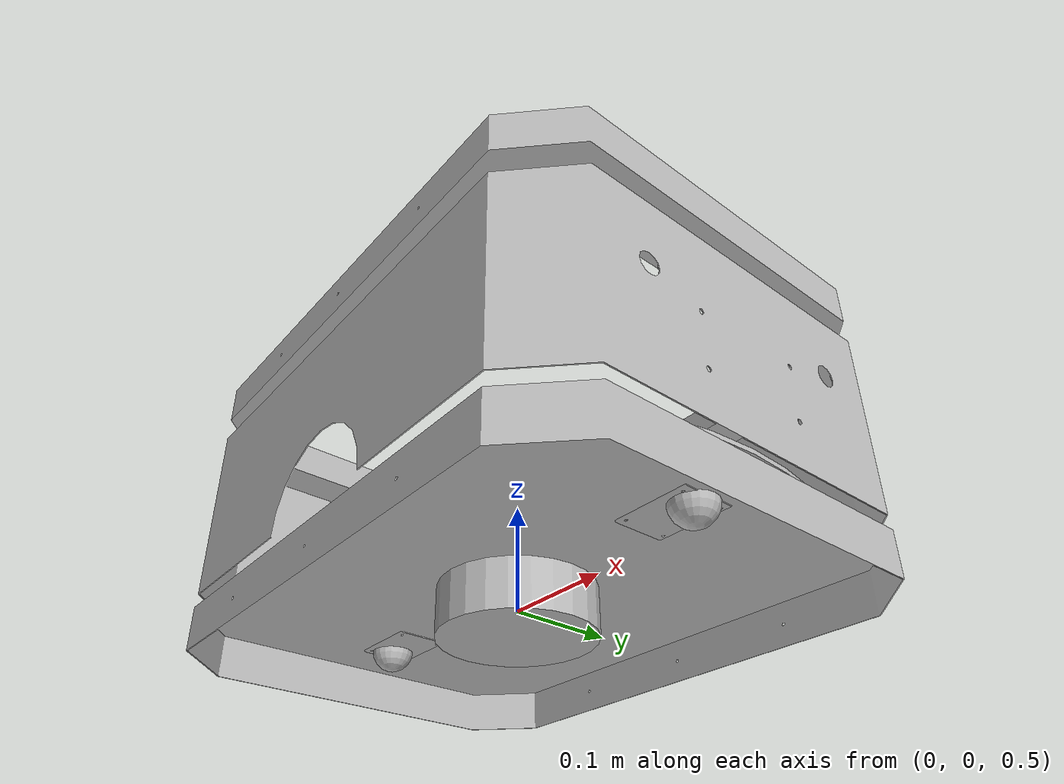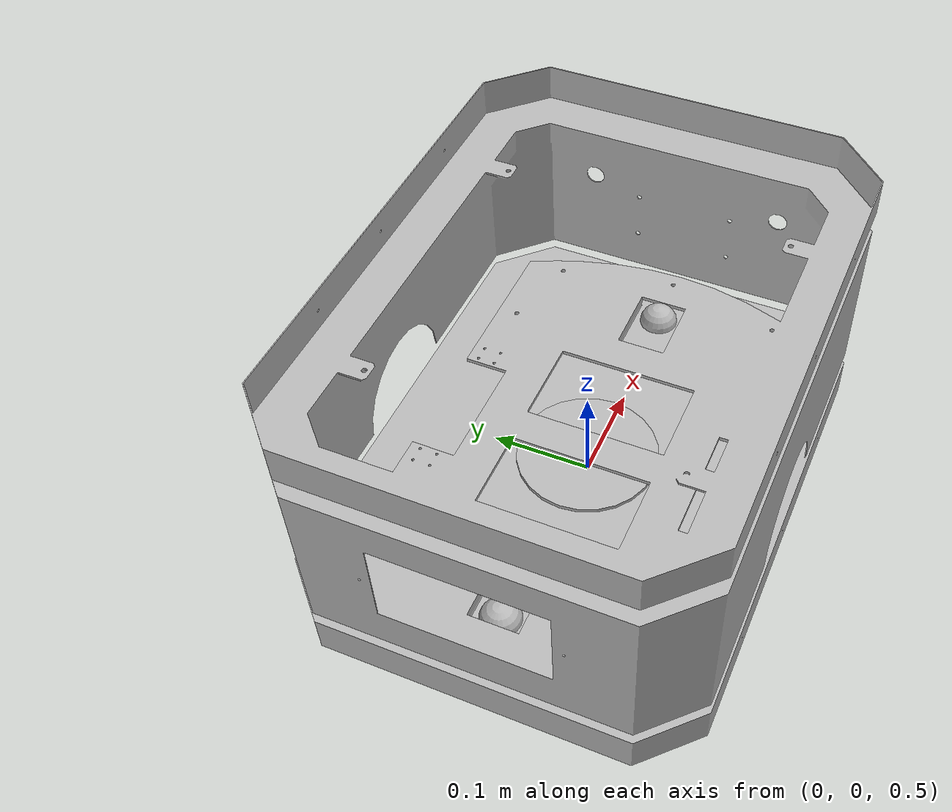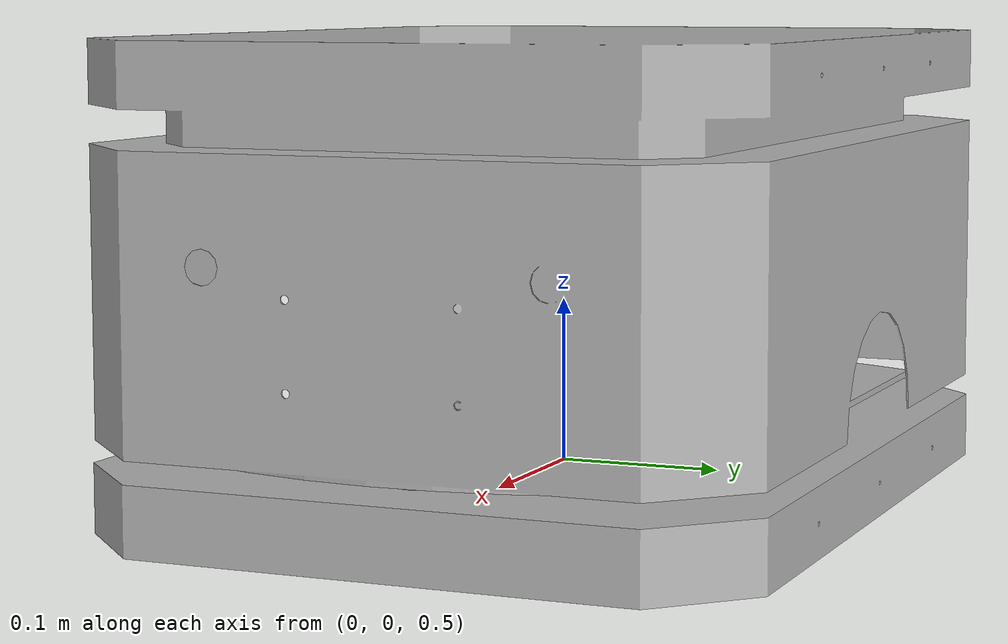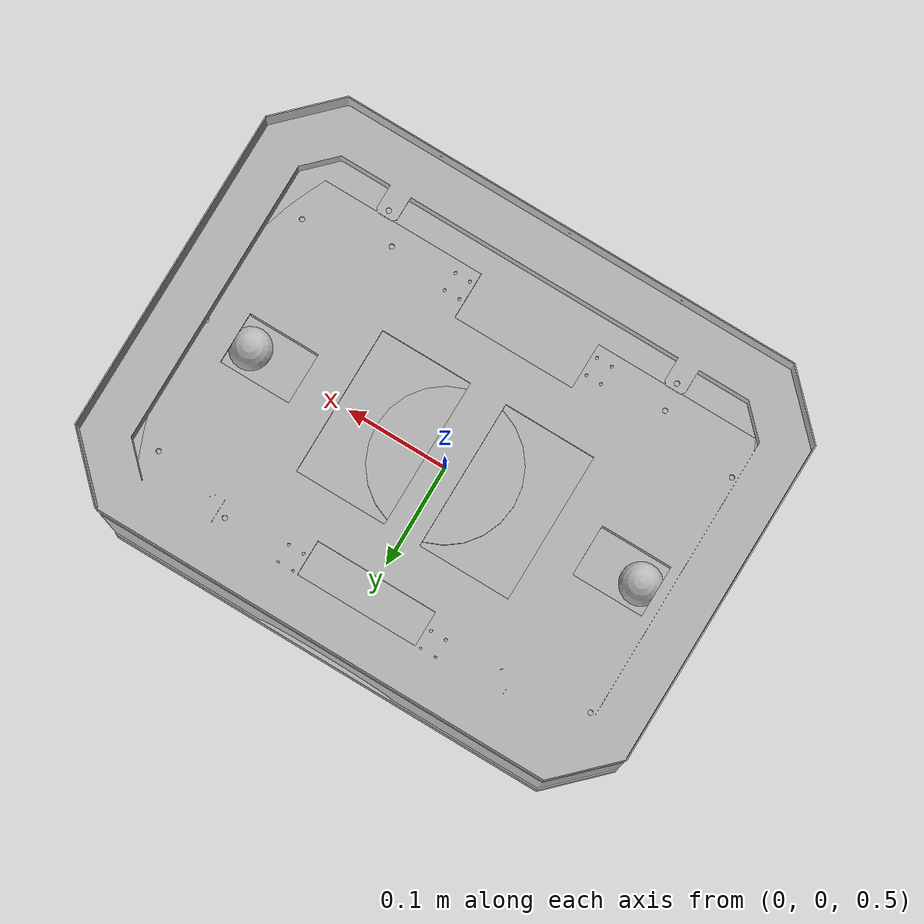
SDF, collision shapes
<?xml version="1.1" ?>
<sdf version="1.5">
    <model name="diff_bot">
        <pose>0 0 .5 0 0 0</pose>
        <!-- Main Chassis -->
        <link name="base_link">
        <!-- Physics -->
        <collision name="collision">
            <pose>0 0 0.03 0 0 0</pose>
            <geometry>
                <mesh>
                    <uri>model://models/base_link.STL</uri>
                </mesh>
            </geometry>
        </collision>
        <inertial>
            <mass>10</mass>
            <pose>0.0 0.0 0.03 0 0 0</pose>
            <inertia>
            <ixx>0.018771*2</ixx>
            <ixy>4.3757E-09*2</ixy>
            <ixz>0.00017048*2</ixz>
            <iyy>0.03253*2</iyy>
            <iyz>1.7492E-11*2</iyz>
            <izz>0.04738*2</izz>
            </inertia>
        </inertial>
        <!-- Visual -->
        <!-- Base frame -->
        <visual name="base">
            <pose>0 0 0.03 0 0 0</pose>
            <geometry>
                <mesh>
                    <uri>model://models/base_link.STL</uri>
                </mesh>
            </geometry>
            <material>
            <color rgba="0.66667 0.69804 0.76471 1" />
            </material>
        </visual>
        <!-- Caster front -->
        <collision name="caster_front_collision">
            <pose>0.2 0 0.02 0 0 0</pose>
            <geometry>
                <sphere>
                    <radius>0.02</radius>
                </sphere>
            </geometry>
            <surface>
            <friction>
                <ode>
                <mu>0</mu>
                <mu2>0</mu2>
                <slip1>1.0</slip1>
                <slip2>1.0</slip2>
                </ode>
            </friction>
            </surface>
        </collision>
        <visual name="caster_front_visual">
            <pose>0.2 0 0.02 0 0 0</pose>
            <geometry>
                <sphere>
                    <radius>0.02</radius>
                </sphere>
            </geometry>
            <material>

                <color rgba="0.66667 0.69804 0.76471 1" />

            </material>
        </visual>
        <!-- Caster back -->
        <collision name="caster_back_collision">
            <pose>-0.2 0 0.02 0 0 0</pose>
            <geometry>
                <sphere>
                    <radius>0.02</radius>
                </sphere>
            </geometry>
            <surface>
            <friction>
                <ode>
                <mu>0</mu>
                <mu2>0</mu2>
                <slip1>1.0</slip1>
                <slip2>1.0</slip2>
                </ode>
            </friction>
            </surface>
        </collision>
        <visual name="caster_back_visual">
            <pose>-0.2 0 0.02 0 0 0</pose>
            <geometry>
                <sphere>
                    <radius>0.02</radius>
                </sphere>
            </geometry>
            <material>

                <color rgba="0.66667 0.69804 0.76471 1" />

            </material>
        </visual>
        </link>

        <!-- Cover link -->
        <link name="cover_link">
            <!-- Physics -->
            <collision name="cover_collision">
            <pose>0 0 0 0 0 0</pose>
            <geometry>
                <mesh>
                    <uri>model://cover_link.STL</uri>
                </mesh>
            </geometry>
            </collision>
            <inertial>
            <mass>0.906</mass>
            <pose>-4.6126E-06 -9.9142E-06 -0.015363 0 0 0</pose>
            <inertia>
                <ixx>0.0046528*2</ixx>
                <ixy>-1.3363E-18*2</ixy>
                <ixz>-7.2541E-19*2</ixz>
                <iyy>0.007642*2</iyy>
                <iyz>-1.6397E-19*2</iyz>
                <izz>0.012232*2</izz>
            </inertia>
            </inertial>
            <!-- Visual -->
            <!-- Base frame -->
            <visual name="cover_visual">
            <pose>0 0 0.03 0 0 0</pose>
            <geometry>
                <mesh>
                    <uri>model://cover_link.STL</uri>
                </mesh>
            </geometry>
            <material>
            <color rgba="1 0.54902 0 1" />
            </material>
            </visual>
        </link>
        <joint name="cover_joint" type="fixed">
            <parent>base_link</parent>
            <child>cover_link</child>
            <axis>
            <xyz>0 0 0.245</xyz>
            <use_parent_model_frame>true</use_parent_model_frame>
            </axis>
        </joint>

        <!-- Left Wheel -->
        <link name="left_wheel">
        <inertial>
            <mass>1</mass>
            <pose>0 0 0 0 0 0</pose>
            <inertia>
            <ixx>0.145833</ixx>
            <ixy>0</ixy>
            <ixz>0</ixz>
            <iyy>0.145833</iyy>
            <iyz>0</iyz>
            <izz>0.125</izz>
            </inertia>
        </inertial>
        <collision name="left_wheel_collision">
            <pose>0 0 0 0 0 0</pose>
            <geometry>
            <cylinder>
                <radius>0.07</radius>
                <length>0.05</length>
            </cylinder>
            </geometry>
        </collision>
        <visual name="left_wheel_visual">
            <pose>0 0 0 0 0 0</pose>
            <geometry>
            <mesh>
                <uri>model://left_tire.stl</uri>
            </mesh>
            </geometry>
            <material>

                <name>Gazebo/Grey</name>

            </material>
        </visual>
        </link>
        <joint name="left_wheel_joint" type="revolute">
        <parent>base_link</parent>
        <child>left_wheel</child>
        <pose>0.0  0.20918 0.07 -1.57265 0 0</pose>
        <axis>
            <xyz>0 0 1</xyz>
            <use_parent_model_frame>true</use_parent_model_frame>
        </axis>
        <physics>
            <ode>
            <limit>
                <cfm>0.000000</cfm>
                <erp>0.900000</erp>
            </limit>
            </ode>
        </physics>
        </joint>

        <!-- Right Wheel -->
        <link name="right_wheel">
            <inertial>
            <mass>1</mass>
            <pose>0 0 0 0 0 0</pose>
            <inertia>
                <ixx>0.145833</ixx>
                <ixy>0</ixy>
                <ixz>0</ixz>
                <iyy>0.145833</iyy>
                <iyz>0</iyz>
                <izz>0.125</izz>
            </inertia>
            </inertial>
            <collision name="right_wheel_collision">
            <pose>0 0 0 0 0 0</pose>
            <geometry>
                <cylinder>
                <radius>0.07</radius>
                <length>0.05</length>
                </cylinder>
            </geometry>
            </collision>
            <visual name="right_wheel_visual">
            <pose>0 0 0 0 0 0</pose>
            <geometry>
                <mesh>
                <uri>model://right_tire.stl</uri>
                </mesh>
            </geometry>
            <material>

                <name>Gazebo/Grey</name>

            </material>
            </visual>
        </link>
        <joint name="right_wheel_joint" type="revolute">
            <parent>base_link</parent>
            <child>right_wheel</child>
            <pose>0.0  -0.20918 0.07 -1.57265 0 0</pose>
            <axis>
            <xyz>0 0 1</xyz>
            <use_parent_model_frame>true</use_parent_model_frame>
            </axis>
            <physics>
            <ode>
                <limit>
                <cfm>0.000000</cfm>
                <erp>0.900000</erp>
                </limit>
            </ode>
            </physics>
        </joint>

        <plugin name="ignition::gazebo::systems::DiffDrive" filename="libignition-gazebo-diff-drive-system.so">
            <alwaysOn>true</alwaysOn>
            <updateRate>50</updateRate>
            <left_joint>left_wheel_joint</left_joint>
            <right_joint>right_wheel_joint</right_joint>
            <wheel_separation>0.4</wheel_separation>
            <wheel_radius>0.14</wheel_radius>
            <topic>cmd_vel</topic>
            <odom_publish_frequency>1</odom_publish_frequency>
        </plugin>
    </model>
</sdf>
